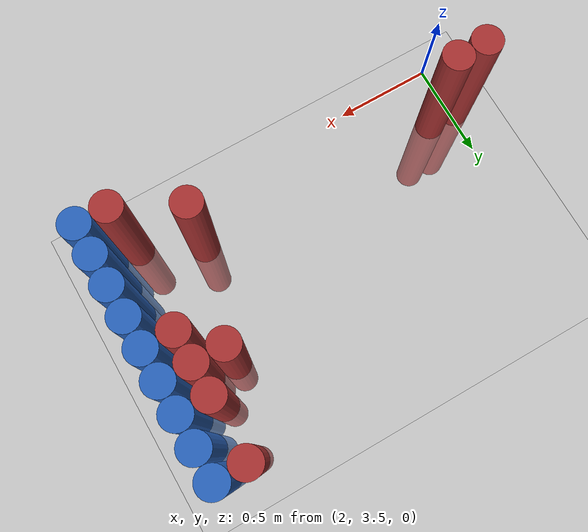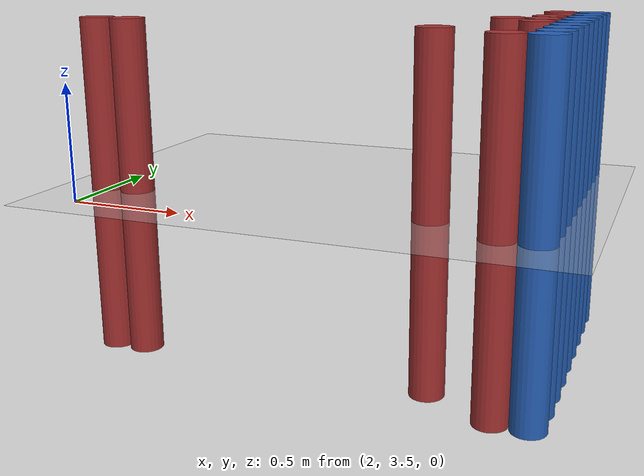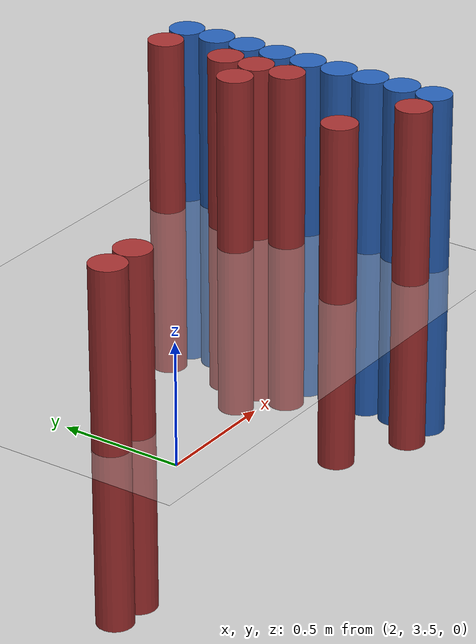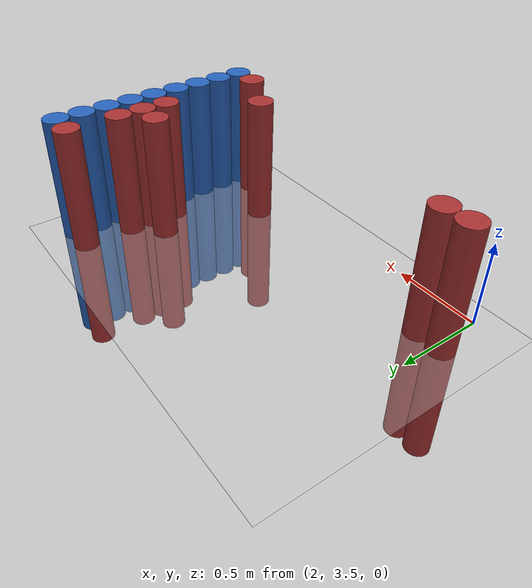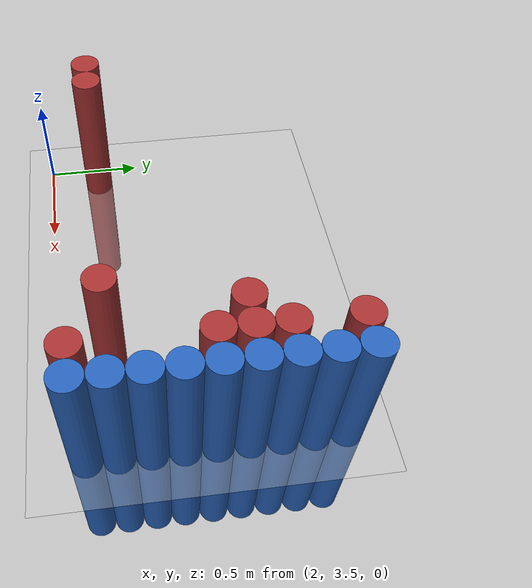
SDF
<sdf version="1.6">
 <world name="default">
  <model name="ground_plane">
   <static>1</static>
   <link name="link">
    <collision name="collision">
     <geometry><plane><normal>0 0 1</normal><size>100 100</size></plane></geometry>
     <surface><friction><ode><mu>100</mu><mu2>50</mu2></ode></friction></surface>
    </collision>
    <visual name="visual">
     <cast_shadows>0</cast_shadows>
     <geometry><plane><normal>0 0 1</normal><size>100 100</size></plane></geometry>
     <material>
      <script><uri>file://media/materials/scripts/gazebo.material</uri><name>Gazebo/Grey</name></script>
     </material>
    </visual>
   </link>
  </model>
  <model name="unit_cylinder_162">
   <static>1</static>
   <pose>3.925000 3.625000 0.000000 0.000000 0.000000 0.000000</pose>
   <link name="link">
    <inertial>
     <mass>1</mass>
     <inertia><ixx>0.145833</ixx><ixy>0</ixy><ixz>0</ixz><iyy>0.145833</iyy><iyz>0</iyz><izz>0.125</izz></inertia>
    </inertial>
    <collision name="collision">
     <geometry><cylinder><radius>0.075000</radius><length>1.5</length></cylinder></geometry>
    </collision>
    <visual name="visual">
     <geometry><cylinder><radius>0.075000</radius><length>1.5</length></cylinder></geometry>
     <material>
      <ambient>0.152000 0.379000 0.720000 1</ambient>
      <diffuse>0.152000 0.379000 0.720000 1</diffuse>
     </material>
     <material>
      <script><name>Gazebo/Grey</name><uri>file://media/materials/scripts/gazebo.material</uri></script>
     </material>
    </visual>
   </link>
  </model>
  <model name="unit_cylinder_164">
   <static>1</static>
   <pose>3.925000 3.775000 0.000000 0.000000 0.000000 0.000000</pose>
   <link name="link">
    <inertial>
     <mass>1</mass>
     <inertia><ixx>0.145833</ixx><ixy>0</ixy><ixz>0</ixz><iyy>0.145833</iyy><iyz>0</iyz><izz>0.125</izz></inertia>
    </inertial>
    <collision name="collision">
     <geometry><cylinder><radius>0.075000</radius><length>1.5</length></cylinder></geometry>
    </collision>
    <visual name="visual">
     <geometry><cylinder><radius>0.075000</radius><length>1.5</length></cylinder></geometry>
     <material>
      <ambient>0.152000 0.379000 0.720000 1</ambient>
      <diffuse>0.152000 0.379000 0.720000 1</diffuse>
     </material>
     <material>
      <script><name>Gazebo/Grey</name><uri>file://media/materials/scripts/gazebo.material</uri></script>
     </material>
    </visual>
   </link>
  </model>
  <model name="unit_cylinder_166">
   <static>1</static>
   <pose>3.925000 3.925000 0.000000 0.000000 0.000000 0.000000</pose>
   <link name="link">
    <inertial>
     <mass>1</mass>
     <inertia><ixx>0.145833</ixx><ixy>0</ixy><ixz>0</ixz><iyy>0.145833</iyy><iyz>0</iyz><izz>0.125</izz></inertia>
    </inertial>
    <collision name="collision">
     <geometry><cylinder><radius>0.075000</radius><length>1.5</length></cylinder></geometry>
    </collision>
    <visual name="visual">
     <geometry><cylinder><radius>0.075000</radius><length>1.5</length></cylinder></geometry>
     <material>
      <ambient>0.152000 0.379000 0.720000 1</ambient>
      <diffuse>0.152000 0.379000 0.720000 1</diffuse>
     </material>
     <material>
      <script><name>Gazebo/Grey</name><uri>file://media/materials/scripts/gazebo.material</uri></script>
     </material>
    </visual>
   </link>
  </model>
  <model name="unit_cylinder_168">
   <static>1</static>
   <pose>3.925000 4.075000 0.000000 0.000000 0.000000 0.000000</pose>
   <link name="link">
    <inertial>
     <mass>1</mass>
     <inertia><ixx>0.145833</ixx><ixy>0</ixy><ixz>0</ixz><iyy>0.145833</iyy><iyz>0</iyz><izz>0.125</izz></inertia>
    </inertial>
    <collision name="collision">
     <geometry><cylinder><radius>0.075000</radius><length>1.5</length></cylinder></geometry>
    </collision>
    <visual name="visual">
     <geometry><cylinder><radius>0.075000</radius><length>1.5</length></cylinder></geometry>
     <material>
      <ambient>0.152000 0.379000 0.720000 1</ambient>
      <diffuse>0.152000 0.379000 0.720000 1</diffuse>
     </material>
     <material>
      <script><name>Gazebo/Grey</name><uri>file://media/materials/scripts/gazebo.material</uri></script>
     </material>
    </visual>
   </link>
  </model>
  <model name="unit_cylinder_170">
   <static>1</static>
   <pose>3.925000 4.225000 0.000000 0.000000 0.000000 0.000000</pose>
   <link name="link">
    <inertial>
     <mass>1</mass>
     <inertia><ixx>0.145833</ixx><ixy>0</ixy><ixz>0</ixz><iyy>0.145833</iyy><iyz>0</iyz><izz>0.125</izz></inertia>
    </inertial>
    <collision name="collision">
     <geometry><cylinder><radius>0.075000</radius><length>1.5</length></cylinder></geometry>
    </collision>
    <visual name="visual">
     <geometry><cylinder><radius>0.075000</radius><length>1.5</length></cylinder></geometry>
     <material>
      <ambient>0.152000 0.379000 0.720000 1</ambient>
      <diffuse>0.152000 0.379000 0.720000 1</diffuse>
     </material>
     <material>
      <script><name>Gazebo/Grey</name><uri>file://media/materials/scripts/gazebo.material</uri></script>
     </material>
    </visual>
   </link>
  </model>
  <model name="unit_cylinder_172">
   <static>1</static>
   <pose>3.925000 4.375000 0.000000 0.000000 0.000000 0.000000</pose>
   <link name="link">
    <inertial>
     <mass>1</mass>
     <inertia><ixx>0.145833</ixx><ixy>0</ixy><ixz>0</ixz><iyy>0.145833</iyy><iyz>0</iyz><izz>0.125</izz></inertia>
    </inertial>
    <collision name="collision">
     <geometry><cylinder><radius>0.075000</radius><length>1.5</length></cylinder></geometry>
    </collision>
    <visual name="visual">
     <geometry><cylinder><radius>0.075000</radius><length>1.5</length></cylinder></geometry>
     <material>
      <ambient>0.152000 0.379000 0.720000 1</ambient>
      <diffuse>0.152000 0.379000 0.720000 1</diffuse>
     </material>
     <material>
      <script><name>Gazebo/Grey</name><uri>file://media/materials/scripts/gazebo.material</uri></script>
     </material>
    </visual>
   </link>
  </model>
  <model name="unit_cylinder_174">
   <static>1</static>
   <pose>3.925000 4.525000 0.000000 0.000000 0.000000 0.000000</pose>
   <link name="link">
    <inertial>
     <mass>1</mass>
     <inertia><ixx>0.145833</ixx><ixy>0</ixy><ixz>0</ixz><iyy>0.145833</iyy><iyz>0</iyz><izz>0.125</izz></inertia>
    </inertial>
    <collision name="collision">
     <geometry><cylinder><radius>0.075000</radius><length>1.5</length></cylinder></geometry>
    </collision>
    <visual name="visual">
     <geometry><cylinder><radius>0.075000</radius><length>1.5</length></cylinder></geometry>
     <material>
      <ambient>0.152000 0.379000 0.720000 1</ambient>
      <diffuse>0.152000 0.379000 0.720000 1</diffuse>
     </material>
     <material>
      <script><name>Gazebo/Grey</name><uri>file://media/materials/scripts/gazebo.material</uri></script>
     </material>
    </visual>
   </link>
  </model>
  <model name="unit_cylinder_176">
   <static>1</static>
   <pose>3.925000 4.675000 0.000000 0.000000 0.000000 0.000000</pose>
   <link name="link">
    <inertial>
     <mass>1</mass>
     <inertia><ixx>0.145833</ixx><ixy>0</ixy><ixz>0</ixz><iyy>0.145833</iyy><iyz>0</iyz><izz>0.125</izz></inertia>
    </inertial>
    <collision name="collision">
     <geometry><cylinder><radius>0.075000</radius><length>1.5</length></cylinder></geometry>
    </collision>
    <visual name="visual">
     <geometry><cylinder><radius>0.075000</radius><length>1.5</length></cylinder></geometry>
     <material>
      <ambient>0.152000 0.379000 0.720000 1</ambient>
      <diffuse>0.152000 0.379000 0.720000 1</diffuse>
     </material>
     <material>
      <script><name>Gazebo/Grey</name><uri>file://media/materials/scripts/gazebo.material</uri></script>
     </material>
    </visual>
   </link>
  </model>
  <model name="unit_cylinder_178">
   <static>1</static>
   <pose>3.925000 4.825000 0.000000 0.000000 0.000000 0.000000</pose>
   <link name="link">
    <inertial>
     <mass>1</mass>
     <inertia><ixx>0.145833</ixx><ixy>0</ixy><ixz>0</ixz><iyy>0.145833</iyy><iyz>0</iyz><izz>0.125</izz></inertia>
    </inertial>
    <collision name="collision">
     <geometry><cylinder><radius>0.075000</radius><length>1.5</length></cylinder></geometry>
    </collision>
    <visual name="visual">
     <geometry><cylinder><radius>0.075000</radius><length>1.5</length></cylinder></geometry>
     <material>
      <ambient>0.152000 0.379000 0.720000 1</ambient>
      <diffuse>0.152000 0.379000 0.720000 1</diffuse>
     </material>
     <material>
      <script><name>Gazebo/Grey</name><uri>file://media/materials/scripts/gazebo.material</uri></script>
     </material>
    </visual>
   </link>
  </model>
  <model name="unit_cylinder_433">
   <static>1</static>
   <pose>1.975000 3.775000 0.000000 0.000000 0.000000 0.000000</pose>
   <link name="link">
    <inertial>
     <mass>1</mass>
     <inertia><ixx>0.145833</ixx><ixy>0</ixy><ixz>0</ixz><iyy>0.145833</iyy><iyz>0</iyz><izz>0.125</izz></inertia>
    </inertial>
    <collision name="collision">
     <geometry><cylinder><radius>0.075000</radius><length>1.5</length></cylinder></geometry>
    </collision>
    <visual name="visual">
     <geometry><cylinder><radius>0.075000</radius><length>1.5</length></cylinder></geometry>
     <material>
      <ambient>0.648000 0.192000 0.192000 1</ambient>
      <diffuse>0.648000 0.192000 0.192000 1</diffuse>
     </material>
     <material>
      <script><name>Gazebo/Grey</name><uri>file://media/materials/scripts/gazebo.material</uri></script>
     </material>
    </visual>
   </link>
  </model>
  <model name="unit_cylinder_438">
   <static>1</static>
   <pose>2.125000 3.775000 0.000000 0.000000 0.000000 0.000000</pose>
   <link name="link">
    <inertial>
     <mass>1</mass>
     <inertia><ixx>0.145833</ixx><ixy>0</ixy><ixz>0</ixz><iyy>0.145833</iyy><iyz>0</iyz><izz>0.125</izz></inertia>
    </inertial>
    <collision name="collision">
     <geometry><cylinder><radius>0.075000</radius><length>1.5</length></cylinder></geometry>
    </collision>
    <visual name="visual">
     <geometry><cylinder><radius>0.075000</radius><length>1.5</length></cylinder></geometry>
     <material>
      <ambient>0.648000 0.192000 0.192000 1</ambient>
      <diffuse>0.648000 0.192000 0.192000 1</diffuse>
     </material>
     <material>
      <script><name>Gazebo/Grey</name><uri>file://media/materials/scripts/gazebo.material</uri></script>
     </material>
    </visual>
   </link>
  </model>
  <model name="unit_cylinder_458">
   <static>1</static>
   <pose>3.475000 3.775000 0.000000 0.000000 0.000000 0.000000</pose>
   <link name="link">
    <inertial>
     <mass>1</mass>
     <inertia><ixx>0.145833</ixx><ixy>0</ixy><ixz>0</ixz><iyy>0.145833</iyy><iyz>0</iyz><izz>0.125</izz></inertia>
    </inertial>
    <collision name="collision">
     <geometry><cylinder><radius>0.075000</radius><length>1.5</length></cylinder></geometry>
    </collision>
    <visual name="visual">
     <geometry><cylinder><radius>0.075000</radius><length>1.5</length></cylinder></geometry>
     <material>
      <ambient>0.648000 0.192000 0.192000 1</ambient>
      <diffuse>0.648000 0.192000 0.192000 1</diffuse>
     </material>
     <material>
      <script><name>Gazebo/Grey</name><uri>file://media/materials/scripts/gazebo.material</uri></script>
     </material>
    </visual>
   </link>
  </model>
  <model name="unit_cylinder_464">
   <static>1</static>
   <pose>3.625000 4.375000 0.000000 0.000000 0.000000 0.000000</pose>
   <link name="link">
    <inertial>
     <mass>1</mass>
     <inertia><ixx>0.145833</ixx><ixy>0</ixy><ixz>0</ixz><iyy>0.145833</iyy><iyz>0</iyz><izz>0.125</izz></inertia>
    </inertial>
    <collision name="collision">
     <geometry><cylinder><radius>0.075000</radius><length>1.5</length></cylinder></geometry>
    </collision>
    <visual name="visual">
     <geometry><cylinder><radius>0.075000</radius><length>1.5</length></cylinder></geometry>
     <material>
      <ambient>0.648000 0.192000 0.192000 1</ambient>
      <diffuse>0.648000 0.192000 0.192000 1</diffuse>
     </material>
     <material>
      <script><name>Gazebo/Grey</name><uri>file://media/materials/scripts/gazebo.material</uri></script>
     </material>
    </visual>
   </link>
  </model>
  <model name="unit_cylinder_484">
   <static>1</static>
   <pose>3.775000 3.625000 0.000000 0.000000 0.000000 0.000000</pose>
   <link name="link">
    <inertial>
     <mass>1</mass>
     <inertia><ixx>0.145833</ixx><ixy>0</ixy><ixz>0</ixz><iyy>0.145833</iyy><iyz>0</iyz><izz>0.125</izz></inertia>
    </inertial>
    <collision name="collision">
     <geometry><cylinder><radius>0.075000</radius><length>1.5</length></cylinder></geometry>
    </collision>
    <visual name="visual">
     <geometry><cylinder><radius>0.075000</radius><length>1.5</length></cylinder></geometry>
     <material>
      <ambient>0.648000 0.192000 0.192000 1</ambient>
      <diffuse>0.648000 0.192000 0.192000 1</diffuse>
     </material>
     <material>
      <script><name>Gazebo/Grey</name><uri>file://media/materials/scripts/gazebo.material</uri></script>
     </material>
    </visual>
   </link>
  </model>
  <model name="unit_cylinder_485">
   <static>1</static>
   <pose>3.775000 4.225000 0.000000 0.000000 0.000000 0.000000</pose>
   <link name="link">
    <inertial>
     <mass>1</mass>
     <inertia><ixx>0.145833</ixx><ixy>0</ixy><ixz>0</ixz><iyy>0.145833</iyy><iyz>0</iyz><izz>0.125</izz></inertia>
    </inertial>
    <collision name="collision">
     <geometry><cylinder><radius>0.075000</radius><length>1.5</length></cylinder></geometry>
    </collision>
    <visual name="visual">
     <geometry><cylinder><radius>0.075000</radius><length>1.5</length></cylinder></geometry>
     <material>
      <ambient>0.648000 0.192000 0.192000 1</ambient>
      <diffuse>0.648000 0.192000 0.192000 1</diffuse>
     </material>
     <material>
      <script><name>Gazebo/Grey</name><uri>file://media/materials/scripts/gazebo.material</uri></script>
     </material>
    </visual>
   </link>
  </model>
  <model name="unit_cylinder_486">
   <static>1</static>
   <pose>3.775000 4.375000 0.000000 0.000000 0.000000 0.000000</pose>
   <link name="link">
    <inertial>
     <mass>1</mass>
     <inertia><ixx>0.145833</ixx><ixy>0</ixy><ixz>0</ixz><iyy>0.145833</iyy><iyz>0</iyz><izz>0.125</izz></inertia>
    </inertial>
    <collision name="collision">
     <geometry><cylinder><radius>0.075000</radius><length>1.5</length></cylinder></geometry>
    </collision>
    <visual name="visual">
     <geometry><cylinder><radius>0.075000</radius><length>1.5</length></cylinder></geometry>
     <material>
      <ambient>0.648000 0.192000 0.192000 1</ambient>
      <diffuse>0.648000 0.192000 0.192000 1</diffuse>
     </material>
     <material>
      <script><name>Gazebo/Grey</name><uri>file://media/materials/scripts/gazebo.material</uri></script>
     </material>
    </visual>
   </link>
  </model>
  <model name="unit_cylinder_487">
   <static>1</static>
   <pose>3.775000 4.525000 0.000000 0.000000 0.000000 0.000000</pose>
   <link name="link">
    <inertial>
     <mass>1</mass>
     <inertia><ixx>0.145833</ixx><ixy>0</ixy><ixz>0</ixz><iyy>0.145833</iyy><iyz>0</iyz><izz>0.125</izz></inertia>
    </inertial>
    <collision name="collision">
     <geometry><cylinder><radius>0.075000</radius><length>1.5</length></cylinder></geometry>
    </collision>
    <visual name="visual">
     <geometry><cylinder><radius>0.075000</radius><length>1.5</length></cylinder></geometry>
     <material>
      <ambient>0.648000 0.192000 0.192000 1</ambient>
      <diffuse>0.648000 0.192000 0.192000 1</diffuse>
     </material>
     <material>
      <script><name>Gazebo/Grey</name><uri>file://media/materials/scripts/gazebo.material</uri></script>
     </material>
    </visual>
   </link>
  </model>
  <model name="unit_cylinder_488">
   <static>1</static>
   <pose>3.775000 4.825000 0.000000 0.000000 0.000000 0.000000</pose>
   <link name="link">
    <inertial>
     <mass>1</mass>
     <inertia><ixx>0.145833</ixx><ixy>0</ixy><ixz>0</ixz><iyy>0.145833</iyy><iyz>0</iyz><izz>0.125</izz></inertia>
    </inertial>
    <collision name="collision">
     <geometry><cylinder><radius>0.075000</radius><length>1.5</length></cylinder></geometry>
    </collision>
    <visual name="visual">
     <geometry><cylinder><radius>0.075000</radius><length>1.5</length></cylinder></geometry>
     <material>
      <ambient>0.648000 0.192000 0.192000 1</ambient>
      <diffuse>0.648000 0.192000 0.192000 1</diffuse>
     </material>
     <material>
      <script><name>Gazebo/Grey</name><uri>file://media/materials/scripts/gazebo.material</uri></script>
     </material>
    </visual>
   </link>
  </model>
  <model name="unit_cylinder_530">
   <static>1</static>
   <pose>3.925000 3.625000 0.000000 0.000000 0.000000 0.000000</pose>
   <link name="link">
    <inertial>
     <mass>1</mass>
     <inertia><ixx>0.145833</ixx><ixy>0</ixy><ixz>0</ixz><iyy>0.145833</iyy><iyz>0</iyz><izz>0.125</izz></inertia>
    </inertial>
    <collision name="collision">
     <geometry><cylinder><radius>0.075000</radius><length>1.5</length></cylinder></geometry>
    </collision>
    <visual name="visual">
     <geometry><cylinder><radius>0.075000</radius><length>1.5</length></cylinder></geometry>
     <material>
      <ambient>0.152000 0.379000 0.720000 1</ambient>
      <diffuse>0.152000 0.379000 0.720000 1</diffuse>
     </material>
     <material>
      <script><name>Gazebo/Grey</name><uri>file://media/materials/scripts/gazebo.material</uri></script>
     </material>
    </visual>
   </link>
  </model>
  <model name="unit_cylinder_531">
   <static>1</static>
   <pose>3.925000 3.775000 0.000000 0.000000 0.000000 0.000000</pose>
   <link name="link">
    <inertial>
     <mass>1</mass>
     <inertia><ixx>0.145833</ixx><ixy>0</ixy><ixz>0</ixz><iyy>0.145833</iyy><iyz>0</iyz><izz>0.125</izz></inertia>
    </inertial>
    <collision name="collision">
     <geometry><cylinder><radius>0.075000</radius><length>1.5</length></cylinder></geometry>
    </collision>
    <visual name="visual">
     <geometry><cylinder><radius>0.075000</radius><length>1.5</length></cylinder></geometry>
     <material>
      <ambient>0.152000 0.379000 0.720000 1</ambient>
      <diffuse>0.152000 0.379000 0.720000 1</diffuse>
     </material>
     <material>
      <script><name>Gazebo/Grey</name><uri>file://media/materials/scripts/gazebo.material</uri></script>
     </material>
    </visual>
   </link>
  </model>
  <model name="unit_cylinder_532">
   <static>1</static>
   <pose>3.925000 3.925000 0.000000 0.000000 0.000000 0.000000</pose>
   <link name="link">
    <inertial>
     <mass>1</mass>
     <inertia><ixx>0.145833</ixx><ixy>0</ixy><ixz>0</ixz><iyy>0.145833</iyy><iyz>0</iyz><izz>0.125</izz></inertia>
    </inertial>
    <collision name="collision">
     <geometry><cylinder><radius>0.075000</radius><length>1.5</length></cylinder></geometry>
    </collision>
    <visual name="visual">
     <geometry><cylinder><radius>0.075000</radius><length>1.5</length></cylinder></geometry>
     <material>
      <ambient>0.152000 0.379000 0.720000 1</ambient>
      <diffuse>0.152000 0.379000 0.720000 1</diffuse>
     </material>
     <material>
      <script><name>Gazebo/Grey</name><uri>file://media/materials/scripts/gazebo.material</uri></script>
     </material>
    </visual>
   </link>
  </model>
  <model name="unit_cylinder_533">
   <static>1</static>
   <pose>3.925000 4.075000 0.000000 0.000000 0.000000 0.000000</pose>
   <link name="link">
    <inertial>
     <mass>1</mass>
     <inertia><ixx>0.145833</ixx><ixy>0</ixy><ixz>0</ixz><iyy>0.145833</iyy><iyz>0</iyz><izz>0.125</izz></inertia>
    </inertial>
    <collision name="collision">
     <geometry><cylinder><radius>0.075000</radius><length>1.5</length></cylinder></geometry>
    </collision>
    <visual name="visual">
     <geometry><cylinder><radius>0.075000</radius><length>1.5</length></cylinder></geometry>
     <material>
      <ambient>0.152000 0.379000 0.720000 1</ambient>
      <diffuse>0.152000 0.379000 0.720000 1</diffuse>
     </material>
     <material>
      <script><name>Gazebo/Grey</name><uri>file://media/materials/scripts/gazebo.material</uri></script>
     </material>
    </visual>
   </link>
  </model>
  <model name="unit_cylinder_534">
   <static>1</static>
   <pose>3.925000 4.225000 0.000000 0.000000 0.000000 0.000000</pose>
   <link name="link">
    <inertial>
     <mass>1</mass>
     <inertia><ixx>0.145833</ixx><ixy>0</ixy><ixz>0</ixz><iyy>0.145833</iyy><iyz>0</iyz><izz>0.125</izz></inertia>
    </inertial>
    <collision name="collision">
     <geometry><cylinder><radius>0.075000</radius><length>1.5</length></cylinder></geometry>
    </collision>
    <visual name="visual">
     <geometry><cylinder><radius>0.075000</radius><length>1.5</length></cylinder></geometry>
     <material>
      <ambient>0.152000 0.379000 0.720000 1</ambient>
      <diffuse>0.152000 0.379000 0.720000 1</diffuse>
     </material>
     <material>
      <script><name>Gazebo/Grey</name><uri>file://media/materials/scripts/gazebo.material</uri></script>
     </material>
    </visual>
   </link>
  </model>
  <model name="unit_cylinder_535">
   <static>1</static>
   <pose>3.925000 4.375000 0.000000 0.000000 0.000000 0.000000</pose>
   <link name="link">
    <inertial>
     <mass>1</mass>
     <inertia><ixx>0.145833</ixx><ixy>0</ixy><ixz>0</ixz><iyy>0.145833</iyy><iyz>0</iyz><izz>0.125</izz></inertia>
    </inertial>
    <collision name="collision">
     <geometry><cylinder><radius>0.075000</radius><length>1.5</length></cylinder></geometry>
    </collision>
    <visual name="visual">
     <geometry><cylinder><radius>0.075000</radius><length>1.5</length></cylinder></geometry>
     <material>
      <ambient>0.152000 0.379000 0.720000 1</ambient>
      <diffuse>0.152000 0.379000 0.720000 1</diffuse>
     </material>
     <material>
      <script><name>Gazebo/Grey</name><uri>file://media/materials/scripts/gazebo.material</uri></script>
     </material>
    </visual>
   </link>
  </model>
  <model name="unit_cylinder_536">
   <static>1</static>
   <pose>3.925000 4.525000 0.000000 0.000000 0.000000 0.000000</pose>
   <link name="link">
    <inertial>
     <mass>1</mass>
     <inertia><ixx>0.145833</ixx><ixy>0</ixy><ixz>0</ixz><iyy>0.145833</iyy><iyz>0</iyz><izz>0.125</izz></inertia>
    </inertial>
    <collision name="collision">
     <geometry><cylinder><radius>0.075000</radius><length>1.5</length></cylinder></geometry>
    </collision>
    <visual name="visual">
     <geometry><cylinder><radius>0.075000</radius><length>1.5</length></cylinder></geometry>
     <material>
      <ambient>0.152000 0.379000 0.720000 1</ambient>
      <diffuse>0.152000 0.379000 0.720000 1</diffuse>
     </material>
     <material>
      <script><name>Gazebo/Grey</name><uri>file://media/materials/scripts/gazebo.material</uri></script>
     </material>
    </visual>
   </link>
  </model>
  <model name="unit_cylinder_537">
   <static>1</static>
   <pose>3.925000 4.675000 0.000000 0.000000 0.000000 0.000000</pose>
   <link name="link">
    <inertial>
     <mass>1</mass>
     <inertia><ixx>0.145833</ixx><ixy>0</ixy><ixz>0</ixz><iyy>0.145833</iyy><iyz>0</iyz><izz>0.125</izz></inertia>
    </inertial>
    <collision name="collision">
     <geometry><cylinder><radius>0.075000</radius><length>1.5</length></cylinder></geometry>
    </collision>
    <visual name="visual">
     <geometry><cylinder><radius>0.075000</radius><length>1.5</length></cylinder></geometry>
     <material>
      <ambient>0.152000 0.379000 0.720000 1</ambient>
      <diffuse>0.152000 0.379000 0.720000 1</diffuse>
     </material>
     <material>
      <script><name>Gazebo/Grey</name><uri>file://media/materials/scripts/gazebo.material</uri></script>
     </material>
    </visual>
   </link>
  </model>
  <model name="unit_cylinder_538">
   <static>1</static>
   <pose>3.925000 4.825000 0.000000 0.000000 0.000000 0.000000</pose>
   <link name="link">
    <inertial>
     <mass>1</mass>
     <inertia><ixx>0.145833</ixx><ixy>0</ixy><ixz>0</ixz><iyy>0.145833</iyy><iyz>0</iyz><izz>0.125</izz></inertia>
    </inertial>
    <collision name="collision">
     <geometry><cylinder><radius>0.075000</radius><length>1.5</length></cylinder></geometry>
    </collision>
    <visual name="visual">
     <geometry><cylinder><radius>0.075000</radius><length>1.5</length></cylinder></geometry>
     <material>
      <ambient>0.152000 0.379000 0.720000 1</ambient>
      <diffuse>0.152000 0.379000 0.720000 1</diffuse>
     </material>
     <material>
      <script><name>Gazebo/Grey</name><uri>file://media/materials/scripts/gazebo.material</uri></script>
     </material>
    </visual>
   </link>
  </model>
 </world>
</sdf>
